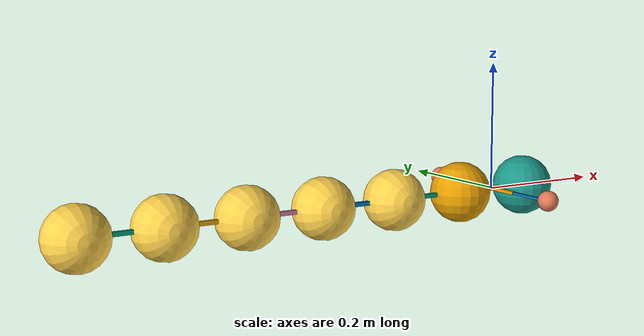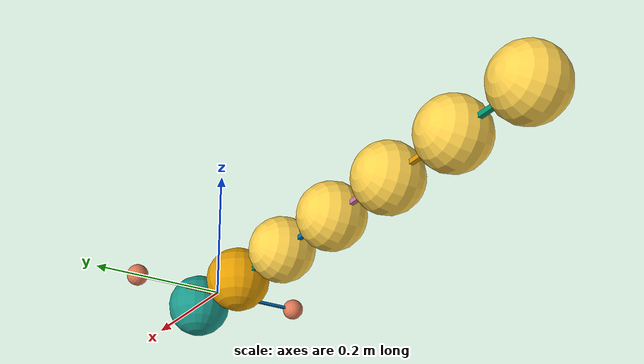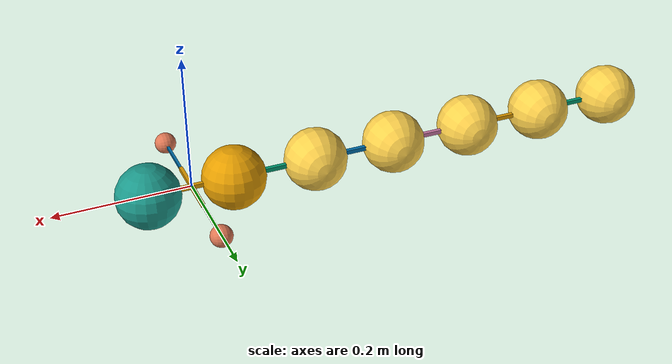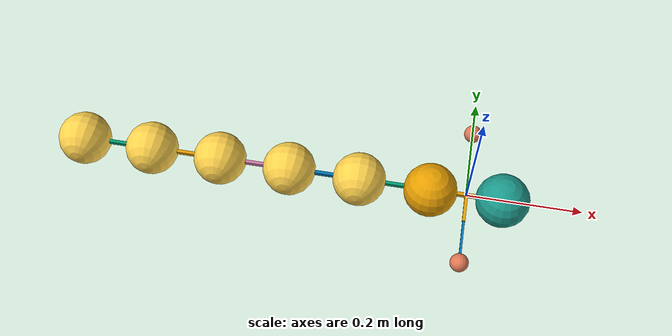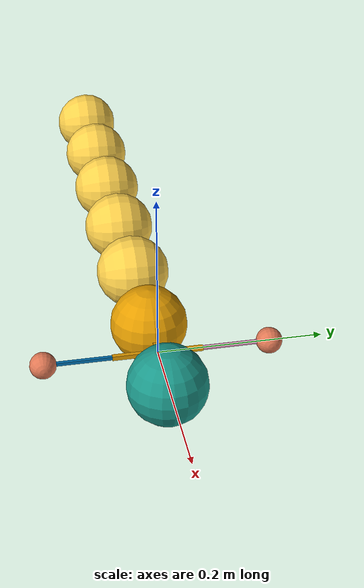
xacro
<?xml version="1.0"?>
<robot xmlns:xacro="http://www.ros.org/wiki/xacro" name="crawler">

  <!--
        To generate the correct .URDF from this XACRO file see https://answers.ros.org/question/10401/how-to-convert-xacro-file-to-urdf-file/
  -->

  <!--CONSTANTS-->
  <xacro:property name="PI" value="3.14159" />

  <xacro:property name="BODY_LENGTH" value="0.76"/>
  <xacro:property name="BODY_MASS" value="2.8"/>

  <xacro:property name="SPINE_SEGMENTS_NUMBER" value="5" />
  <xacro:property name="N_HALF" value="3" />

  <xacro:property name="SPINE_SEGMENT_LENGTH" value="${BODY_LENGTH/(SPINE_SEGMENTS_NUMBER+1)}" />
  <xacro:property name="SPINE_DORSAL_BENDING_LIMIT" value="${PI/8}" />
  <xacro:property name="SPINE_LATERAL_BENDING_LIMIT" value="${PI/2}" />

  <xacro:property name="BODY_SPHERE_MASS" value="${BODY_MASS/(SPINE_SEGMENTS_NUMBER+2)}" /><!-- +2 for the girdle masses-->
  <xacro:property name="BODY_SPHERE_RADIUS" value="${BODY_LENGTH/16}" />
  <xacro:property name="BODY_SPHERE_INERTIA" value="${2*BODY_SPHERE_MASS*BODY_SPHERE_RADIUS*BODY_SPHERE_RADIUS/5}" />

  <xacro:property name="GIRDLE_WIDTH" value="${BODY_LENGTH/14}" />
  <xacro:property name="GIRDLE_LENGTH" value="${SPINE_SEGMENT_LENGTH/2}" />

  <xacro:property name="LEG_LENGTH" value="${BODY_LENGTH/9.4}" />
  <xacro:property name="LEG_TIP_MASS" value="${BODY_SPHERE_MASS/10}" />
  <xacro:property name="LEG_TIP_RADIUS" value="${BODY_SPHERE_RADIUS/3}" />
  <xacro:property name="LEG_TIP_INERTIA" value="${2*LEG_TIP_MASS*LEG_TIP_RADIUS*LEG_TIP_RADIUS/5}" />

  <xacro:property name="GIRDLE_FLEXION_LIMIT" value="${PI/6}" />
  <xacro:property name="GIRDLE_EXTENSION_LIMIT" value="${PI/6}" />

  <xacro:property name="GIRDLE_ABDUCTION_LIMIT" value="${PI/2}" />
  <xacro:property name="GIRDLE_ADDUCTION_LIMIT" value="${PI/2}" />

  <xacro:property name="JOINT_DAMPING" value="0.0" />
  <xacro:property name="JOINT_FRICTION" value="0.0" />
  <xacro:property name="JOINT_MAX_SPEED" value="50.0" />
  <xacro:property name="JOINT_MAX_EFFORT" value="50.0" />

  <xacro:property name="VISUAL_BOX_RATIO" value="0.05" />

  <!--MASS SCALING-->
  <!--Values taken from the 5-bars model-->
  <xacro:property name="KB" value="${(0.456-0.196)/(BODY_LENGTH*0.37)}" />
  <xacro:property name="KT" value="${(0.218-0.456)/(BODY_LENGTH*0.49)}" />
  <xacro:property name="M0" value="${(BODY_MASS - KB*SPINE_SEGMENT_LENGTH*(N_HALF*(N_HALF+1))/2 - KT*SPINE_SEGMENT_LENGTH*((SPINE_SEGMENTS_NUMBER-N_HALF)*(SPINE_SEGMENTS_NUMBER-N_HALF+1))/2)/SPINE_SEGMENTS_NUMBER}" />

<!--########### COLORS used for the links ###########-->
<!--colors are currently implemented as macro because just defining them, as shown in the ROS tutorial, seems not to work-->

  <material name="girdle_material">
    <color rgba="0.106 0.6 0.545 1"/>
  </material>
  <material name="body_material">
    <color rgba="1 0.8235 0.298 1"/>
  </material>
  <material name="leg_material">
    <color rgba="0.878 0.471 0.333 1"/>
  </material>

<!--########### MACRO for links and joints ###########-->

  <xacro:macro name="spine_segment_macro" params="N">
    <link name="spine_connection_${N}">
      <inertial>
      <origin xyz="0 0 0" rpy="0 0 0"/>
        <mass value="${BODY_SPHERE_MASS/100}"/>
        <inertia ixx="${BODY_SPHERE_INERTIA/100}"  ixy="0"  ixz="0" iyy="${BODY_SPHERE_INERTIA/100}" iyz="0" izz="${BODY_SPHERE_INERTIA/100}" />
      </inertial>
    </link>
    <link name="spine_link_${N}">
      <inertial>
      <origin xyz="${-SPINE_SEGMENT_LENGTH} 0 0" rpy="0 0 0"/>
        <mass value="${BODY_SPHERE_MASS}"/>
        <inertia ixx="${BODY_SPHERE_INERTIA}"  ixy="0"  ixz="0" iyy="${BODY_SPHERE_INERTIA}" iyz="0" izz="${BODY_SPHERE_INERTIA}" />
      </inertial>
      <visual>
        <origin xyz="${-SPINE_SEGMENT_LENGTH} 0 0" rpy="0 0 0"/>
        <geometry>
          <sphere radius="${BODY_SPHERE_RADIUS}" />
        </geometry>
        <material name="body_material"/>
      </visual>
      <visual>
        <origin xyz="${-SPINE_SEGMENT_LENGTH/2} 0 0" rpy="0 0 0"/>
        <geometry>
          <box size="${SPINE_SEGMENT_LENGTH} ${VISUAL_BOX_RATIO*SPINE_SEGMENT_LENGTH} ${VISUAL_BOX_RATIO*SPINE_SEGMENT_LENGTH}"/>
        </geometry>
      </visual>
      <collision>
        <origin xyz="${-SPINE_SEGMENT_LENGTH} 0 0" rpy="0 0 0"/>
        <geometry>
          <sphere radius="${BODY_SPHERE_RADIUS}" />
        </geometry>
      </collision>
    </link>
    <joint name="spine_lateral_joint_${N}" type="revolute">
      <origin xyz="${-SPINE_SEGMENT_LENGTH} 0 0" rpy="${PI/2} 0 0"/>
      <axis xyz="0 0 1"/>
      <parent link="spine_link_${N-1}"/>
      <child link="spine_connection_${N}"/>
      <dynamics damping="${JOINT_DAMPING}" friction="${JOINT_FRICTION}"/>
      <limit effort="${JOINT_MAX_EFFORT}" velocity="${JOINT_MAX_SPEED}" lower="-${SPINE_LATERAL_BENDING_LIMIT}" upper="${SPINE_LATERAL_BENDING_LIMIT}" />
    </joint>
    <joint name="spine_dorsal_joint_${N}" type="revolute">
      <origin xyz="0 0 0" rpy="${-PI/2} 0 0"/>
      <axis xyz="0 0 1"/>
      <parent link="spine_connection_${N}"/>
      <child link="spine_link_${N}"/>
      <dynamics damping="${JOINT_DAMPING}" friction="${JOINT_FRICTION}"/>
      <limit effort="${JOINT_MAX_EFFORT}" velocity="${JOINT_MAX_SPEED}" lower="-${SPINE_DORSAL_BENDING_LIMIT}" upper="${SPINE_DORSAL_BENDING_LIMIT}" />
    </joint>
  </xacro:macro>

  <xacro:macro name="leg_macro" params="prefix reflect">
    <link name="${prefix}_girdle_connection_1">
      <inertial>
        <origin xyz="0 0 0" rpy="0 0 0"/>
        <mass value="${LEG_TIP_MASS/100}"/>
        <inertia ixx="${LEG_TIP_INERTIA/100}"  ixy="0"  ixz="0" iyy="${LEG_TIP_INERTIA/100}" iyz="0" izz="${LEG_TIP_INERTIA/100}" />
      </inertial>
    </link>
    <!--NOTE: currently leg joints have symmetrical limits, to avoid problems deriving from having reflected reference frames-->
    <joint name="${prefix}_girdle_abduction_joint" type="revolute">
      <origin xyz="0 ${-reflect*GIRDLE_WIDTH} 0" rpy="0 0 ${-reflect*PI/2}"/>
      <axis xyz="0 0 1"/>
      <parent link="girdle"/>
      <child link="${prefix}_girdle_connection_1"/>
      <dynamics damping="${JOINT_DAMPING}" friction="${JOINT_FRICTION}"/>
      <limit effort="${JOINT_MAX_EFFORT}" velocity="${JOINT_MAX_SPEED}" lower="-${GIRDLE_ABDUCTION_LIMIT}" upper="${GIRDLE_ABDUCTION_LIMIT}" />
    </joint>
    <link name="${prefix}_leg">
      <inertial>
      <origin xyz="${LEG_LENGTH} 0 0" rpy="0 0 0"/>
        <mass value="${LEG_TIP_MASS}"/>
        <inertia ixx="${LEG_TIP_INERTIA}"  ixy="0"  ixz="0" iyy="${LEG_TIP_INERTIA}" iyz="0" izz="${LEG_TIP_INERTIA}" />
      </inertial>
      <visual>
        <origin xyz="${LEG_LENGTH} 0 0" rpy="0 0 0"/>
        <geometry>
          <sphere radius="${LEG_TIP_RADIUS}" />
        </geometry>
        <material name="leg_material"/>
      </visual>
      <visual>
        <origin xyz="${LEG_LENGTH/2} 0 0" rpy="0 0 0"/>
        <geometry>
          <box size="${LEG_LENGTH} ${VISUAL_BOX_RATIO*LEG_LENGTH} ${VISUAL_BOX_RATIO*LEG_LENGTH}" />
        </geometry>
      </visual>
      <collision>
        <origin xyz="${LEG_LENGTH} 0 0" rpy="0 0 0"/>
        <geometry>
          <sphere radius="${LEG_TIP_RADIUS}" />
        </geometry>
      </collision>
    </link>
    <!--NOTE: currently leg joints have symmetrical limits, to avoid problems deriving from having reflected reference frames-->
    <joint name="${prefix}_girdle_flection_joint" type="revolute">
      <origin xyz="0 0 0" rpy="${-reflect*PI/2} 0 0"/>
      <axis xyz="0 0 1"/>
      <parent link="${prefix}_girdle_connection_1"/>
      <child link="${prefix}_leg"/>
      <dynamics damping="${JOINT_DAMPING}" friction="${JOINT_FRICTION}"/>
      <limit effort="${JOINT_MAX_EFFORT}" velocity="${JOINT_MAX_SPEED}" lower="-${GIRDLE_FLEXION_LIMIT}" upper="${GIRDLE_FLEXION_LIMIT}" />
    </joint>
  </xacro:macro>

  <!-- Loop is off by one because the first segment is added manually -->
  <xacro:macro name="spine_segments_loop" params="segments_qty">
    <xacro:spine_segment_macro N="${SPINE_SEGMENTS_NUMBER + 2 - segments_qty}"/>
    <xacro:if value="${segments_qty-2}">
        <xacro:spine_segments_loop segments_qty="${segments_qty-1}" />
    </xacro:if>
  </xacro:macro>

<!-- ########### MODEL LINKS AND JOINTS ########### -->
  <link name="girdle">
   <inertial>
     <origin xyz="0 0 0" rpy="0 0 0"/>
     <mass value="${2*BODY_SPHERE_MASS}"/>
     <inertia ixx="${2*BODY_SPHERE_INERTIA}"  ixy="0"  ixz="0"
              iyy="${2*(BODY_SPHERE_INERTIA+GIRDLE_LENGTH*GIRDLE_LENGTH*BODY_SPHERE_MASS)}" iyz="0"
              izz="${2*(BODY_SPHERE_INERTIA+GIRDLE_LENGTH*GIRDLE_LENGTH*BODY_SPHERE_MASS)}" />
   </inertial>
   <visual>
     <origin xyz="${GIRDLE_LENGTH} 0 0" rpy="0 0 0"/>
     <geometry>
       <sphere radius="${BODY_SPHERE_RADIUS}" />
     </geometry>
     <material name="girdle_material"/>
   </visual>
   <visual>
     <origin xyz="${-GIRDLE_LENGTH} 0 0" rpy="0 0 0"/>
     <geometry>
       <sphere radius="${BODY_SPHERE_RADIUS}" />
     </geometry>
   </visual>
   <visual>
     <origin xyz="0 0 0" rpy="0 0 0"/>
     <geometry>
       <box size="${VISUAL_BOX_RATIO*2*GIRDLE_WIDTH} ${2*GIRDLE_WIDTH} ${VISUAL_BOX_RATIO*2*GIRDLE_WIDTH}"/>
     </geometry>
   </visual>
   <visual>
     <origin xyz="0 0 0" rpy="0 0 0"/>
     <geometry>
       <box size="${2*GIRDLE_LENGTH} ${VISUAL_BOX_RATIO*2*GIRDLE_LENGTH} ${VISUAL_BOX_RATIO*2*GIRDLE_LENGTH}"/>
     </geometry>
   </visual>
   <collision>
     <origin xyz="${GIRDLE_LENGTH} 0 0" rpy="0 0 0"/>
     <geometry>
       <sphere radius="${BODY_SPHERE_RADIUS}" />
     </geometry>
   </collision>
   <collision>
     <origin xyz="${-GIRDLE_LENGTH} 0 0" rpy="0 0 0"/>
     <geometry>
       <sphere radius="${BODY_SPHERE_RADIUS}" />
     </geometry>
   </collision>
 </link>

  <link name="spine_connection_1">
      <inertial>
      <origin xyz="0 0 0" rpy="0 0 0"/>
        <mass value="${BODY_SPHERE_MASS/100}"/>
        <inertia ixx="${BODY_SPHERE_INERTIA/100}"  ixy="0"  ixz="0" iyy="${BODY_SPHERE_INERTIA/100}" iyz="0" izz="${BODY_SPHERE_INERTIA/100}" />
      </inertial>
    </link>
  <link name="spine_link_1">
    <inertial>
    <origin xyz="${-SPINE_SEGMENT_LENGTH} 0 0" rpy="0 0 0"/>
      <mass value="${BODY_SPHERE_MASS}"/>
      <inertia ixx="${BODY_SPHERE_INERTIA}"  ixy="0"  ixz="0" iyy="${BODY_SPHERE_INERTIA}" iyz="0" izz="${BODY_SPHERE_INERTIA}" />
    </inertial>
    <visual>
      <origin xyz="${-SPINE_SEGMENT_LENGTH} 0 0" rpy="0 0 0"/>
      <geometry>
        <sphere radius="${BODY_SPHERE_RADIUS}" />
      </geometry>
      <material name="body_material"/>
    </visual>
    <visual>
      <origin xyz="${-SPINE_SEGMENT_LENGTH/2} 0 0" rpy="0 0 0"/>
      <geometry>
        <box size="${SPINE_SEGMENT_LENGTH} ${VISUAL_BOX_RATIO*SPINE_SEGMENT_LENGTH} ${VISUAL_BOX_RATIO*SPINE_SEGMENT_LENGTH}"/>
      </geometry>
    </visual>
    <collision>
      <origin xyz="${-SPINE_SEGMENT_LENGTH} 0 0" rpy="0 0 0"/>
      <geometry>
        <sphere radius="${BODY_SPHERE_RADIUS}" />
      </geometry>
    </collision>
  </link>
  <joint name="spine_lateral_joint_1" type="revolute">
    <origin xyz="${-GIRDLE_LENGTH} 0 0" rpy="0 0 0"/>
    <axis xyz="0 0 1"/>
    <parent link="girdle"/>
    <child link="spine_connection_1"/>
    <dynamics damping="${JOINT_DAMPING}" friction="${JOINT_FRICTION}"/>
    <limit effort="${JOINT_MAX_EFFORT}" velocity="${JOINT_MAX_SPEED}" lower="-${SPINE_LATERAL_BENDING_LIMIT}" upper="${SPINE_LATERAL_BENDING_LIMIT}" />
  </joint>
  <joint name="spine_dorsal_joint_1" type="revolute">
    <origin xyz="0 0 0" rpy="${-PI/2} 0 0"/>
    <axis xyz="0 0 1"/>
    <parent link="spine_connection_1"/>
    <child link="spine_link_1"/>
    <dynamics damping="${JOINT_DAMPING}" friction="${JOINT_FRICTION}"/>
    <limit effort="${JOINT_MAX_EFFORT}" velocity="${JOINT_MAX_SPEED}" lower="-${SPINE_DORSAL_BENDING_LIMIT}" upper="${SPINE_DORSAL_BENDING_LIMIT}" />
  </joint>

  <xacro:spine_segments_loop segments_qty="${SPINE_SEGMENTS_NUMBER}"/>

  <xacro:leg_macro prefix="right" reflect="1"/>
  <xacro:leg_macro prefix="left" reflect="-1"/>

</robot>
